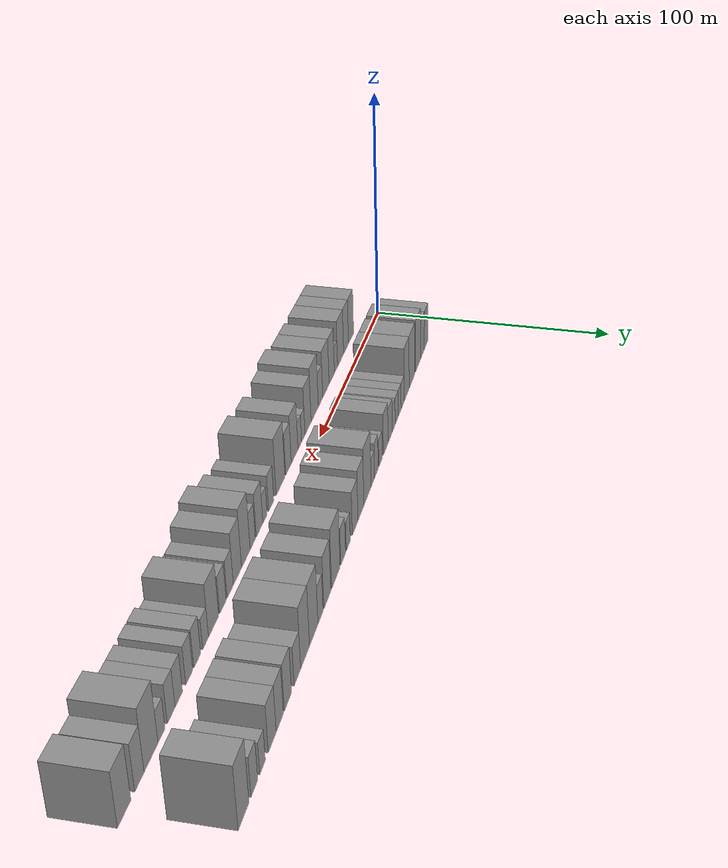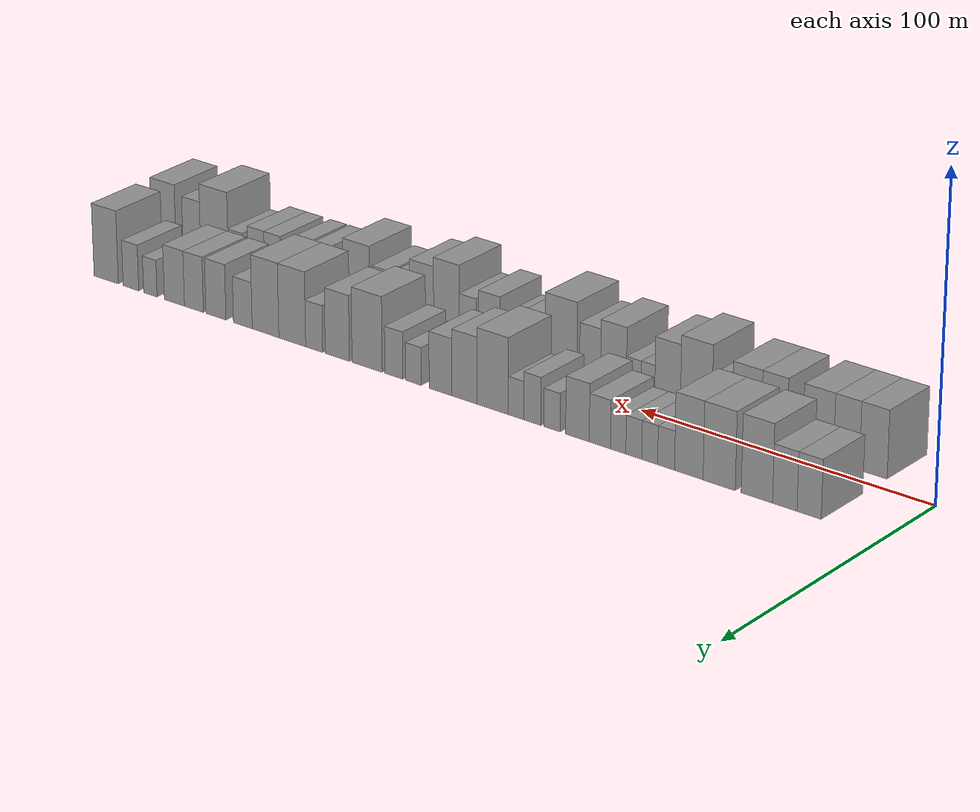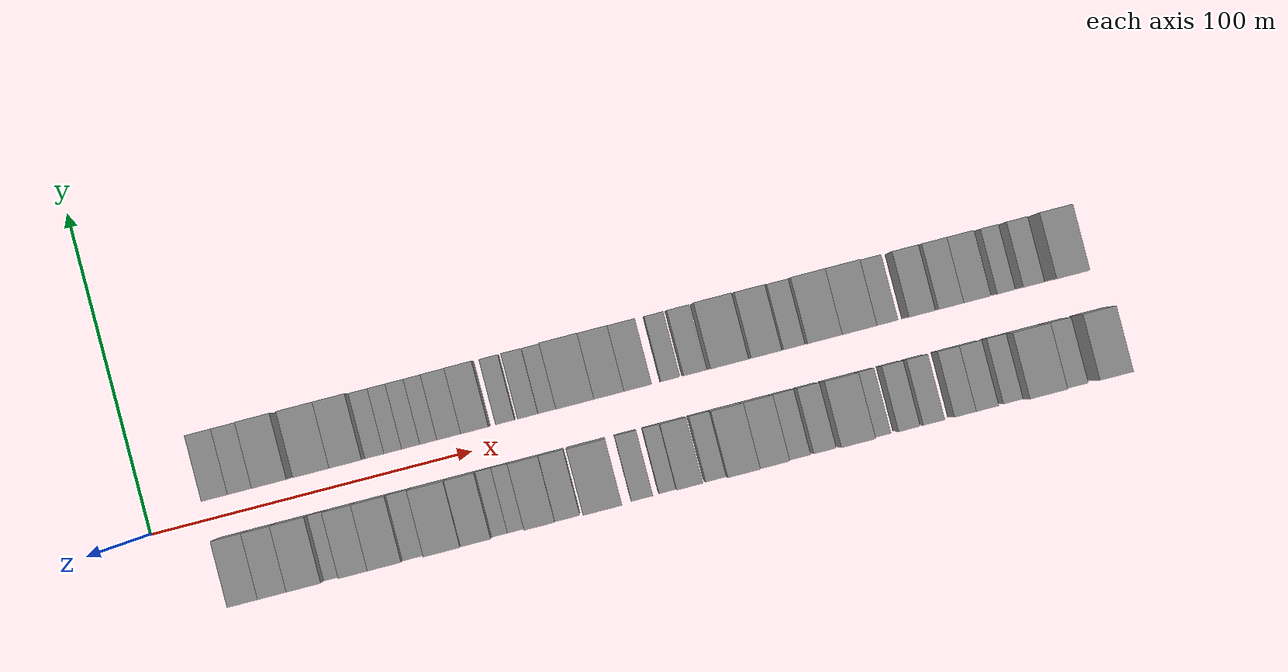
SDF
<sdf version="1.6">
 <world name="default">
  <scene>
   <sky><clouds><speed>12</speed></clouds></sky>
   <ambient>0.4 0.4 0.4 1</ambient>
   <background>0.7 0.7 0.7 1</background>
   <shadows>1</shadows>
  </scene>
  <gravity>0 0 -9.8066</gravity>
  <magnetic_field>6e-06 2.3e-05 -4.2e-05</magnetic_field>
  <physics default="0" name="default_physics" type="ode">
   <ode>
    <solver>
     <type>quick</type>
     <iters>10</iters>
     <sor>1.0</sor>
     <use_dynamic_moi_rescaling>0</use_dynamic_moi_rescaling>
    </solver>
    <constraints>
     <cfm>0</cfm>
     <erp>0.2</erp>
     <contact_max_correcting_vel>100</contact_max_correcting_vel>
     <contact_surface_layer>0.001</contact_surface_layer>
    </constraints>
   </ode>
   <max_step_size>0.004</max_step_size>
   <real_time_factor>1</real_time_factor>
   <real_time_update_rate>250</real_time_update_rate>
  </physics>
  <light name="sun" type="directional">
   <pose>0 0 10 0 0 0</pose>
   <diffuse>0.8 0.8 0.8 1</diffuse>
   <specular>0.2 0.2 0.2 1</specular>
   <attenuation>
    <range>1000</range>
    <constant>0.9</constant>
    <linear>0.01</linear>
    <quadratic>0.001</quadratic>
   </attenuation>
   <direction>-0.5 0.1 -0.9</direction>
  </light>
  <model name="building_1">
   <static>1</static>
   <pose>23.9897 16.0000 0 0.000000 0.000000 1.570796</pose>
   <link name="link">
    <pose>0 0 9.00 0 0 0</pose>
    <collision name="collision"><geometry><box><size>20.0000 7.9794 18.0000</size></box></geometry></collision>
    <visual name="visual">
     <cast_shadows>0</cast_shadows>
     <geometry><box><size>20.0000 7.9794 18.0000</size></box></geometry>
     <material>
      <script>
       <uri>model://grey_wall/materials/scripts</uri>
       <uri>model://grey_wall/materials/textures</uri>
       <name>vrc/grey_wall</name>
      </script>
     </material>
    </visual>
   </link>
  </model>
  <model name="building_2">
   <static>1</static>
   <pose>32.0457 16.0000 0 0.000000 0.000000 1.570796</pose>
   <link name="link">
    <pose>0 0 9.00 0 0 0</pose>
    <collision name="collision"><geometry><box><size>20.0000 8.1326 18.0000</size></box></geometry></collision>
    <visual name="visual">
     <cast_shadows>0</cast_shadows>
     <geometry><box><size>20.0000 8.1326 18.0000</size></box></geometry>
     <material>
      <script>
       <uri>model://grey_wall/materials/scripts</uri>
       <uri>model://grey_wall/materials/textures</uri>
       <name>vrc/grey_wall</name>
      </script>
     </material>
    </visual>
   </link>
  </model>
  <model name="building_3">
   <static>1</static>
   <pose>41.3516 16.0000 0 0.000000 0.000000 1.570796</pose>
   <link name="link">
    <pose>0 0 12.00 0 0 0</pose>
    <collision name="collision"><geometry><box><size>20.0000 10.4791 24.0000</size></box></geometry></collision>
    <visual name="visual">
     <cast_shadows>0</cast_shadows>
     <geometry><box><size>20.0000 10.4791 24.0000</size></box></geometry>
     <material>
      <script>
       <uri>model://grey_wall/materials/scripts</uri>
       <uri>model://grey_wall/materials/textures</uri>
       <name>vrc/grey_wall</name>
      </script>
     </material>
    </visual>
   </link>
  </model>
  <model name="building_4">
   <static>1</static>
   <pose>54.0591 16.0000 0 0.000000 0.000000 1.570796</pose>
   <link name="link">
    <pose>0 0 12.00 0 0 0</pose>
    <collision name="collision"><geometry><box><size>20.0000 10.9360 24.0000</size></box></geometry></collision>
    <visual name="visual">
     <cast_shadows>0</cast_shadows>
     <geometry><box><size>20.0000 10.9360 24.0000</size></box></geometry>
     <material>
      <script>
       <uri>model://grey_wall/materials/scripts</uri>
       <uri>model://grey_wall/materials/textures</uri>
       <name>vrc/grey_wall</name>
      </script>
     </material>
    </visual>
   </link>
  </model>
  <model name="building_5">
   <static>1</static>
   <pose>64.4099 16.0000 0 0.000000 0.000000 1.570796</pose>
   <link name="link">
    <pose>0 0 12.00 0 0 0</pose>
    <collision name="collision"><geometry><box><size>20.0000 9.7655 24.0000</size></box></geometry></collision>
    <visual name="visual">
     <cast_shadows>0</cast_shadows>
     <geometry><box><size>20.0000 9.7655 24.0000</size></box></geometry>
     <material>
      <script>
       <uri>model://grey_wall/materials/scripts</uri>
       <uri>model://grey_wall/materials/textures</uri>
       <name>vrc/grey_wall</name>
      </script>
     </material>
    </visual>
   </link>
  </model>
  <model name="building_6">
   <static>1</static>
   <pose>72.1993 16.0000 0 0.000000 0.000000 1.570796</pose>
   <link name="link">
    <pose>0 0 6.00 0 0 0</pose>
    <collision name="collision"><geometry><box><size>20.0000 5.8133 12.0000</size></box></geometry></collision>
    <visual name="visual">
     <cast_shadows>0</cast_shadows>
     <geometry><box><size>20.0000 5.8133 12.0000</size></box></geometry>
     <material>
      <script>
       <uri>model://grey_wall/materials/scripts</uri>
       <uri>model://grey_wall/materials/textures</uri>
       <name>vrc/grey_wall</name>
      </script>
     </material>
    </visual>
   </link>
  </model>
  <model name="building_7">
   <static>1</static>
   <pose>77.8411 16.0000 0 0.000000 0.000000 1.570796</pose>
   <link name="link">
    <pose>0 0 6.00 0 0 0</pose>
    <collision name="collision"><geometry><box><size>20.0000 5.4703 12.0000</size></box></geometry></collision>
    <visual name="visual">
     <cast_shadows>0</cast_shadows>
     <geometry><box><size>20.0000 5.4703 12.0000</size></box></geometry>
     <material>
      <script>
       <uri>model://grey_wall/materials/scripts</uri>
       <uri>model://grey_wall/materials/textures</uri>
       <name>vrc/grey_wall</name>
      </script>
     </material>
    </visual>
   </link>
  </model>
  <model name="building_8">
   <static>1</static>
   <pose>83.3580 16.0000 0 0.000000 0.000000 1.570796</pose>
   <link name="link">
    <pose>0 0 6.00 0 0 0</pose>
    <collision name="collision"><geometry><box><size>20.0000 5.5636 12.0000</size></box></geometry></collision>
    <visual name="visual">
     <cast_shadows>0</cast_shadows>
     <geometry><box><size>20.0000 5.5636 12.0000</size></box></geometry>
     <material>
      <script>
       <uri>model://grey_wall/materials/scripts</uri>
       <uri>model://grey_wall/materials/textures</uri>
       <name>vrc/grey_wall</name>
      </script>
     </material>
    </visual>
   </link>
  </model>
  <model name="building_9">
   <static>1</static>
   <pose>88.8433 16.0000 0 0.000000 0.000000 1.570796</pose>
   <link name="link">
    <pose>0 0 6.00 0 0 0</pose>
    <collision name="collision"><geometry><box><size>20.0000 5.4069 12.0000</size></box></geometry></collision>
    <visual name="visual">
     <cast_shadows>0</cast_shadows>
     <geometry><box><size>20.0000 5.4069 12.0000</size></box></geometry>
     <material>
      <script>
       <uri>model://grey_wall/materials/scripts</uri>
       <uri>model://grey_wall/materials/textures</uri>
       <name>vrc/grey_wall</name>
      </script>
     </material>
    </visual>
   </link>
  </model>
  <model name="building_10">
   <static>1</static>
   <pose>95.2733 16.0000 0 0.000000 0.000000 1.570796</pose>
   <link name="link">
    <pose>0 0 7.50 0 0 0</pose>
    <collision name="collision"><geometry><box><size>20.0000 7.4531 15.0000</size></box></geometry></collision>
    <visual name="visual">
     <cast_shadows>0</cast_shadows>
     <geometry><box><size>20.0000 7.4531 15.0000</size></box></geometry>
     <material>
      <script>
       <uri>model://grey_wall/materials/scripts</uri>
       <uri>model://grey_wall/materials/textures</uri>
       <name>vrc/grey_wall</name>
      </script>
     </material>
    </visual>
   </link>
  </model>
  <model name="building_11">
   <static>1</static>
   <pose>103.1877 16.0000 0 0.000000 0.000000 1.570796</pose>
   <link name="link">
    <pose>0 0 9.00 0 0 0</pose>
    <collision name="collision"><geometry><box><size>20.0000 8.3757 18.0000</size></box></geometry></collision>
    <visual name="visual">
     <cast_shadows>0</cast_shadows>
     <geometry><box><size>20.0000 8.3757 18.0000</size></box></geometry>
     <material>
      <script>
       <uri>model://grey_wall/materials/scripts</uri>
       <uri>model://grey_wall/materials/textures</uri>
       <name>vrc/grey_wall</name>
      </script>
     </material>
    </visual>
   </link>
  </model>
  <model name="building_12">
   <static>1</static>
   <pose>112.2840 16.0000 0 0.000000 0.000000 1.570796</pose>
   <link name="link">
    <pose>0 0 6.00 0 0 0</pose>
    <collision name="collision"><geometry><box><size>20.0000 5.8167 12.0000</size></box></geometry></collision>
    <visual name="visual">
     <cast_shadows>0</cast_shadows>
     <geometry><box><size>20.0000 5.8167 12.0000</size></box></geometry>
     <material>
      <script>
       <uri>model://grey_wall/materials/scripts</uri>
       <uri>model://grey_wall/materials/textures</uri>
       <name>vrc/grey_wall</name>
      </script>
     </material>
    </visual>
   </link>
  </model>
  <model name="building_13">
   <static>1</static>
   <pose>119.3106 16.0000 0 0.000000 0.000000 1.570796</pose>
   <link name="link">
    <pose>0 0 7.50 0 0 0</pose>
    <collision name="collision"><geometry><box><size>20.0000 6.2365 15.0000</size></box></geometry></collision>
    <visual name="visual">
     <cast_shadows>0</cast_shadows>
     <geometry><box><size>20.0000 6.2365 15.0000</size></box></geometry>
     <material>
      <script>
       <uri>model://grey_wall/materials/scripts</uri>
       <uri>model://grey_wall/materials/textures</uri>
       <name>vrc/grey_wall</name>
      </script>
     </material>
    </visual>
   </link>
  </model>
  <model name="building_14">
   <static>1</static>
   <pose>125.2256 16.0000 0 0.000000 0.000000 1.570796</pose>
   <link name="link">
    <pose>0 0 6.00 0 0 0</pose>
    <collision name="collision"><geometry><box><size>20.0000 5.5934 12.0000</size></box></geometry></collision>
    <visual name="visual">
     <cast_shadows>0</cast_shadows>
     <geometry><box><size>20.0000 5.5934 12.0000</size></box></geometry>
     <material>
      <script>
       <uri>model://grey_wall/materials/scripts</uri>
       <uri>model://grey_wall/materials/textures</uri>
       <name>vrc/grey_wall</name>
      </script>
     </material>
    </visual>
   </link>
  </model>
  <model name="building_15">
   <static>1</static>
   <pose>133.7658 16.0000 0 0.000000 0.000000 1.570796</pose>
   <link name="link">
    <pose>0 0 12.00 0 0 0</pose>
    <collision name="collision"><geometry><box><size>20.0000 11.4869 24.0000</size></box></geometry></collision>
    <visual name="visual">
     <cast_shadows>0</cast_shadows>
     <geometry><box><size>20.0000 11.4869 24.0000</size></box></geometry>
     <material>
      <script>
       <uri>model://grey_wall/materials/scripts</uri>
       <uri>model://grey_wall/materials/textures</uri>
       <name>vrc/grey_wall</name>
      </script>
     </material>
    </visual>
   </link>
  </model>
  <model name="building_16">
   <static>1</static>
   <pose>144.0793 16.0000 0 0.000000 0.000000 1.570796</pose>
   <link name="link">
    <pose>0 0 10.50 0 0 0</pose>
    <collision name="collision"><geometry><box><size>20.0000 9.1402 21.0000</size></box></geometry></collision>
    <visual name="visual">
     <cast_shadows>0</cast_shadows>
     <geometry><box><size>20.0000 9.1402 21.0000</size></box></geometry>
     <material>
      <script>
       <uri>model://grey_wall/materials/scripts</uri>
       <uri>model://grey_wall/materials/textures</uri>
       <name>vrc/grey_wall</name>
      </script>
     </material>
    </visual>
   </link>
  </model>
  <model name="building_17">
   <static>1</static>
   <pose>152.8760 16.0000 0 0.000000 0.000000 1.570796</pose>
   <link name="link">
    <pose>0 0 9.00 0 0 0</pose>
    <collision name="collision"><geometry><box><size>20.0000 8.4531 18.0000</size></box></geometry></collision>
    <visual name="visual">
     <cast_shadows>0</cast_shadows>
     <geometry><box><size>20.0000 8.4531 18.0000</size></box></geometry>
     <material>
      <script>
       <uri>model://grey_wall/materials/scripts</uri>
       <uri>model://grey_wall/materials/textures</uri>
       <name>vrc/grey_wall</name>
      </script>
     </material>
    </visual>
   </link>
  </model>
  <model name="building_18">
   <static>1</static>
   <pose>163.0296 16.0000 0 0.000000 0.000000 1.570796</pose>
   <link name="link">
    <pose>0 0 6.00 0 0 0</pose>
    <collision name="collision"><geometry><box><size>20.0000 5.8539 12.0000</size></box></geometry></collision>
    <visual name="visual">
     <cast_shadows>0</cast_shadows>
     <geometry><box><size>20.0000 5.8539 12.0000</size></box></geometry>
     <material>
      <script>
       <uri>model://grey_wall/materials/scripts</uri>
       <uri>model://grey_wall/materials/textures</uri>
       <name>vrc/grey_wall</name>
      </script>
     </material>
    </visual>
   </link>
  </model>
  <model name="building_19">
   <static>1</static>
   <pose>170.3531 16.0000 0 0.000000 0.000000 1.570796</pose>
   <link name="link">
    <pose>0 0 7.50 0 0 0</pose>
    <collision name="collision"><geometry><box><size>20.0000 6.7931 15.0000</size></box></geometry></collision>
    <visual name="visual">
     <cast_shadows>0</cast_shadows>
     <geometry><box><size>20.0000 6.7931 15.0000</size></box></geometry>
     <material>
      <script>
       <uri>model://grey_wall/materials/scripts</uri>
       <uri>model://grey_wall/materials/textures</uri>
       <name>vrc/grey_wall</name>
      </script>
     </material>
    </visual>
   </link>
  </model>
  <model name="building_20">
   <static>1</static>
   <pose>180.4915 16.0000 0 0.000000 0.000000 1.570796</pose>
   <link name="link">
    <pose>0 0 12.00 0 0 0</pose>
    <collision name="collision"><geometry><box><size>20.0000 11.4838 24.0000</size></box></geometry></collision>
    <visual name="visual">
     <cast_shadows>0</cast_shadows>
     <geometry><box><size>20.0000 11.4838 24.0000</size></box></geometry>
     <material>
      <script>
       <uri>model://grey_wall/materials/scripts</uri>
       <uri>model://grey_wall/materials/textures</uri>
       <name>vrc/grey_wall</name>
      </script>
     </material>
    </visual>
   </link>
  </model>
  <model name="building_21">
   <static>1</static>
   <pose>191.8626 16.0000 0 0.000000 0.000000 1.570796</pose>
   <link name="link">
    <pose>0 0 10.50 0 0 0</pose>
    <collision name="collision"><geometry><box><size>20.0000 9.2583 21.0000</size></box></geometry></collision>
    <visual name="visual">
     <cast_shadows>0</cast_shadows>
     <geometry><box><size>20.0000 9.2583 21.0000</size></box></geometry>
     <material>
      <script>
       <uri>model://grey_wall/materials/scripts</uri>
       <uri>model://grey_wall/materials/textures</uri>
       <name>vrc/grey_wall</name>
      </script>
     </material>
    </visual>
   </link>
  </model>
  <model name="building_22">
   <static>1</static>
   <pose>200.7845 16.0000 0 0.000000 0.000000 1.570796</pose>
   <link name="link">
    <pose>0 0 7.50 0 0 0</pose>
    <collision name="collision"><geometry><box><size>20.0000 6.5855 15.0000</size></box></geometry></collision>
    <visual name="visual">
     <cast_shadows>0</cast_shadows>
     <geometry><box><size>20.0000 6.5855 15.0000</size></box></geometry>
     <material>
      <script>
       <uri>model://grey_wall/materials/scripts</uri>
       <uri>model://grey_wall/materials/textures</uri>
       <name>vrc/grey_wall</name>
      </script>
     </material>
    </visual>
   </link>
  </model>
  <model name="building_23">
   <static>1</static>
   <pose>209.3078 16.0000 0 0.000000 0.000000 1.570796</pose>
   <link name="link">
    <pose>0 0 12.00 0 0 0</pose>
    <collision name="collision"><geometry><box><size>20.0000 10.4612 24.0000</size></box></geometry></collision>
    <visual name="visual">
     <cast_shadows>0</cast_shadows>
     <geometry><box><size>20.0000 10.4612 24.0000</size></box></geometry>
     <material>
      <script>
       <uri>model://grey_wall/materials/scripts</uri>
       <uri>model://grey_wall/materials/textures</uri>
       <name>vrc/grey_wall</name>
      </script>
     </material>
    </visual>
   </link>
  </model>
  <model name="building_24">
   <static>1</static>
   <pose>219.7901 16.0000 0 0.000000 0.000000 1.570796</pose>
   <link name="link">
    <pose>0 0 12.00 0 0 0</pose>
    <collision name="collision"><geometry><box><size>20.0000 10.5034 24.0000</size></box></geometry></collision>
    <visual name="visual">
     <cast_shadows>0</cast_shadows>
     <geometry><box><size>20.0000 10.5034 24.0000</size></box></geometry>
     <material>
      <script>
       <uri>model://grey_wall/materials/scripts</uri>
       <uri>model://grey_wall/materials/textures</uri>
       <name>vrc/grey_wall</name>
      </script>
     </material>
    </visual>
   </link>
  </model>
  <model name="building_25">
   <static>1</static>
   <pose>228.7678 16.0000 0 0.000000 0.000000 1.570796</pose>
   <link name="link">
    <pose>0 0 7.50 0 0 0</pose>
    <collision name="collision"><geometry><box><size>20.0000 7.4520 15.0000</size></box></geometry></collision>
    <visual name="visual">
     <cast_shadows>0</cast_shadows>
     <geometry><box><size>20.0000 7.4520 15.0000</size></box></geometry>
     <material>
      <script>
       <uri>model://grey_wall/materials/scripts</uri>
       <uri>model://grey_wall/materials/textures</uri>
       <name>vrc/grey_wall</name>
      </script>
     </material>
    </visual>
   </link>
  </model>
  <model name="building_26">
   <static>1</static>
   <pose>239.5030 16.0000 0 0.000000 0.000000 1.570796</pose>
   <link name="link">
    <pose>0 0 9.00 0 0 0</pose>
    <collision name="collision"><geometry><box><size>20.0000 8.0183 18.0000</size></box></geometry></collision>
    <visual name="visual">
     <cast_shadows>0</cast_shadows>
     <geometry><box><size>20.0000 8.0183 18.0000</size></box></geometry>
     <material>
      <script>
       <uri>model://grey_wall/materials/scripts</uri>
       <uri>model://grey_wall/materials/textures</uri>
       <name>vrc/grey_wall</name>
      </script>
     </material>
    </visual>
   </link>
  </model>
  <model name="building_27">
   <static>1</static>
   <pose>248.3474 16.0000 0 0.000000 0.000000 1.570796</pose>
   <link name="link">
    <pose>0 0 9.00 0 0 0</pose>
    <collision name="collision"><geometry><box><size>20.0000 7.6706 18.0000</size></box></geometry></collision>
    <visual name="visual">
     <cast_shadows>0</cast_shadows>
     <geometry><box><size>20.0000 7.6706 18.0000</size></box></geometry>
     <material>
      <script>
       <uri>model://grey_wall/materials/scripts</uri>
       <uri>model://grey_wall/materials/textures</uri>
       <name>vrc/grey_wall</name>
      </script>
     </material>
    </visual>
   </link>
  </model>
  <model name="building_28">
   <static>1</static>
   <pose>256.2662 16.0000 0 0.000000 0.000000 1.570796</pose>
   <link name="link">
    <pose>0 0 9.00 0 0 0</pose>
    <collision name="collision"><geometry><box><size>20.0000 8.1670 18.0000</size></box></geometry></collision>
    <visual name="visual">
     <cast_shadows>0</cast_shadows>
     <geometry><box><size>20.0000 8.1670 18.0000</size></box></geometry>
     <material>
      <script>
       <uri>model://grey_wall/materials/scripts</uri>
       <uri>model://grey_wall/materials/textures</uri>
       <name>vrc/grey_wall</name>
      </script>
     </material>
    </visual>
   </link>
  </model>
  <model name="building_29">
   <static>1</static>
   <pose>266.1053 16.0000 0 0.000000 0.000000 1.570796</pose>
   <link name="link">
    <pose>0 0 6.00 0 0 0</pose>
    <collision name="collision"><geometry><box><size>20.0000 5.5113 12.0000</size></box></geometry></collision>
    <visual name="visual">
     <cast_shadows>0</cast_shadows>
     <geometry><box><size>20.0000 5.5113 12.0000</size></box></geometry>
     <material>
      <script>
       <uri>model://grey_wall/materials/scripts</uri>
       <uri>model://grey_wall/materials/textures</uri>
       <name>vrc/grey_wall</name>
      </script>
     </material>
    </visual>
   </link>
  </model>
  <model name="building_30">
   <static>1</static>
   <pose>274.0847 16.0000 0 0.000000 0.000000 1.570796</pose>
   <link name="link">
    <pose>0 0 7.50 0 0 0</pose>
    <collision name="collision"><geometry><box><size>20.0000 6.4473 15.0000</size></box></geometry></collision>
    <visual name="visual">
     <cast_shadows>0</cast_shadows>
     <geometry><box><size>20.0000 6.4473 15.0000</size></box></geometry>
     <material>
      <script>
       <uri>model://grey_wall/materials/scripts</uri>
       <uri>model://grey_wall/materials/textures</uri>
       <name>vrc/grey_wall</name>
      </script>
     </material>
    </visual>
   </link>
  </model>
  <model name="building_31">
   <static>1</static>
   <pose>284.3253 16.0000 0 0.000000 0.000000 1.570796</pose>
   <link name="link">
    <pose>0 0 12.00 0 0 0</pose>
    <collision name="collision"><geometry><box><size>20.0000 10.0339 24.0000</size></box></geometry></collision>
    <visual name="visual">
     <cast_shadows>0</cast_shadows>
     <geometry><box><size>20.0000 10.0339 24.0000</size></box></geometry>
     <material>
      <script>
       <uri>model://grey_wall/materials/scripts</uri>
       <uri>model://grey_wall/materials/textures</uri>
       <name>vrc/grey_wall</name>
      </script>
     </material>
    </visual>
   </link>
  </model>
  <model name="building_32">
   <static>1</static>
   <pose>24.6128 -16.0000 0 0.000000 0.000000 1.570796</pose>
   <link name="link">
    <pose>0 0 10.50 0 0 0</pose>
    <collision name="collision"><geometry><box><size>20.0000 9.2257 21.0000</size></box></geometry></collision>
    <visual name="visual">
     <cast_shadows>0</cast_shadows>
     <geometry><box><size>20.0000 9.2257 21.0000</size></box></geometry>
     <material>
      <script>
       <uri>model://grey_wall/materials/scripts</uri>
       <uri>model://grey_wall/materials/textures</uri>
       <name>vrc/grey_wall</name>
      </script>
     </material>
    </visual>
   </link>
  </model>
  <model name="building_33">
   <static>1</static>
   <pose>33.5681 -16.0000 0 0.000000 0.000000 1.570796</pose>
   <link name="link">
    <pose>0 0 10.50 0 0 0</pose>
    <collision name="collision"><geometry><box><size>20.0000 8.6849 21.0000</size></box></geometry></collision>
    <visual name="visual">
     <cast_shadows>0</cast_shadows>
     <geometry><box><size>20.0000 8.6849 21.0000</size></box></geometry>
     <material>
      <script>
       <uri>model://grey_wall/materials/scripts</uri>
       <uri>model://grey_wall/materials/textures</uri>
       <name>vrc/grey_wall</name>
      </script>
     </material>
    </visual>
   </link>
  </model>
  <model name="building_34">
   <static>1</static>
   <pose>43.1339 -16.0000 0 0.000000 0.000000 1.570796</pose>
   <link name="link">
    <pose>0 0 10.50 0 0 0</pose>
    <collision name="collision"><geometry><box><size>20.0000 10.4465 21.0000</size></box></geometry></collision>
    <visual name="visual">
     <cast_shadows>0</cast_shadows>
     <geometry><box><size>20.0000 10.4465 21.0000</size></box></geometry>
     <material>
      <script>
       <uri>model://grey_wall/materials/scripts</uri>
       <uri>model://grey_wall/materials/textures</uri>
       <name>vrc/grey_wall</name>
      </script>
     </material>
    </visual>
   </link>
  </model>
  <model name="building_35">
   <static>1</static>
   <pose>51.0194 -16.0000 0 0.000000 0.000000 1.570796</pose>
   <link name="link">
    <pose>0 0 6.00 0 0 0</pose>
    <collision name="collision"><geometry><box><size>20.0000 5.3245 12.0000</size></box></geometry></collision>
    <visual name="visual">
     <cast_shadows>0</cast_shadows>
     <geometry><box><size>20.0000 5.3245 12.0000</size></box></geometry>
     <material>
      <script>
       <uri>model://grey_wall/materials/scripts</uri>
       <uri>model://grey_wall/materials/textures</uri>
       <name>vrc/grey_wall</name>
      </script>
     </material>
    </visual>
   </link>
  </model>
  <model name="building_36">
   <static>1</static>
   <pose>58.0935 -16.0000 0 0.000000 0.000000 1.570796</pose>
   <link name="link">
    <pose>0 0 10.50 0 0 0</pose>
    <collision name="collision"><geometry><box><size>20.0000 8.8238 21.0000</size></box></geometry></collision>
    <visual name="visual">
     <cast_shadows>0</cast_shadows>
     <geometry><box><size>20.0000 8.8238 21.0000</size></box></geometry>
     <material>
      <script>
       <uri>model://grey_wall/materials/scripts</uri>
       <uri>model://grey_wall/materials/textures</uri>
       <name>vrc/grey_wall</name>
      </script>
     </material>
    </visual>
   </link>
  </model>
  <model name="building_37">
   <static>1</static>
   <pose>67.6104 -16.0000 0 0.000000 0.000000 1.570796</pose>
   <link name="link">
    <pose>0 0 10.50 0 0 0</pose>
    <collision name="collision"><geometry><box><size>20.0000 10.2100 21.0000</size></box></geometry></collision>
    <visual name="visual">
     <cast_shadows>0</cast_shadows>
     <geometry><box><size>20.0000 10.2100 21.0000</size></box></geometry>
     <material>
      <script>
       <uri>model://grey_wall/materials/scripts</uri>
       <uri>model://grey_wall/materials/textures</uri>
       <name>vrc/grey_wall</name>
      </script>
     </material>
    </visual>
   </link>
  </model>
  <model name="building_38">
   <static>1</static>
   <pose>76.1924 -16.0000 0 0.000000 0.000000 1.570796</pose>
   <link name="link">
    <pose>0 0 7.50 0 0 0</pose>
    <collision name="collision"><geometry><box><size>20.0000 6.9540 15.0000</size></box></geometry></collision>
    <visual name="visual">
     <cast_shadows>0</cast_shadows>
     <geometry><box><size>20.0000 6.9540 15.0000</size></box></geometry>
     <material>
      <script>
       <uri>model://grey_wall/materials/scripts</uri>
       <uri>model://grey_wall/materials/textures</uri>
       <name>vrc/grey_wall</name>
      </script>
     </material>
    </visual>
   </link>
  </model>
  <model name="building_39">
   <static>1</static>
   <pose>85.1978 -16.0000 0 0.000000 0.000000 1.570796</pose>
   <link name="link">
    <pose>0 0 12.00 0 0 0</pose>
    <collision name="collision"><geometry><box><size>20.0000 11.0569 24.0000</size></box></geometry></collision>
    <visual name="visual">
     <cast_shadows>0</cast_shadows>
     <geometry><box><size>20.0000 11.0569 24.0000</size></box></geometry>
     <material>
      <script>
       <uri>model://grey_wall/materials/scripts</uri>
       <uri>model://grey_wall/materials/textures</uri>
       <name>vrc/grey_wall</name>
      </script>
     </material>
    </visual>
   </link>
  </model>
  <model name="building_40">
   <static>1</static>
   <pose>95.2963 -16.0000 0 0.000000 0.000000 1.570796</pose>
   <link name="link">
    <pose>0 0 10.50 0 0 0</pose>
    <collision name="collision"><geometry><box><size>20.0000 9.1401 21.0000</size></box></geometry></collision>
    <visual name="visual">
     <cast_shadows>0</cast_shadows>
     <geometry><box><size>20.0000 9.1401 21.0000</size></box></geometry>
     <material>
      <script>
       <uri>model://grey_wall/materials/scripts</uri>
       <uri>model://grey_wall/materials/textures</uri>
       <name>vrc/grey_wall</name>
      </script>
     </material>
    </visual>
   </link>
  </model>
  <model name="building_41">
   <static>1</static>
   <pose>102.2779 -16.0000 0 0.000000 0.000000 1.570796</pose>
   <link name="link">
    <pose>0 0 6.00 0 0 0</pose>
    <collision name="collision"><geometry><box><size>20.0000 4.8230 12.0000</size></box></geometry></collision>
    <visual name="visual">
     <cast_shadows>0</cast_shadows>
     <geometry><box><size>20.0000 4.8230 12.0000</size></box></geometry>
     <material>
      <script>
       <uri>model://grey_wall/materials/scripts</uri>
       <uri>model://grey_wall/materials/textures</uri>
       <name>vrc/grey_wall</name>
      </script>
     </material>
    </visual>
   </link>
  </model>
  <model name="building_42">
   <static>1</static>
   <pose>107.3566 -16.0000 0 0.000000 0.000000 1.570796</pose>
   <link name="link">
    <pose>0 0 6.00 0 0 0</pose>
    <collision name="collision"><geometry><box><size>20.0000 5.3344 12.0000</size></box></geometry></collision>
    <visual name="visual">
     <cast_shadows>0</cast_shadows>
     <geometry><box><size>20.0000 5.3344 12.0000</size></box></geometry>
     <material>
      <script>
       <uri>model://grey_wall/materials/scripts</uri>
       <uri>model://grey_wall/materials/textures</uri>
       <name>vrc/grey_wall</name>
      </script>
     </material>
    </visual>
   </link>
  </model>
  <model name="building_43">
   <static>1</static>
   <pose>114.6691 -16.0000 0 0.000000 0.000000 1.570796</pose>
   <link name="link">
    <pose>0 0 10.50 0 0 0</pose>
    <collision name="collision"><geometry><box><size>20.0000 9.2907 21.0000</size></box></geometry></collision>
    <visual name="visual">
     <cast_shadows>0</cast_shadows>
     <geometry><box><size>20.0000 9.2907 21.0000</size></box></geometry>
     <material>
      <script>
       <uri>model://grey_wall/materials/scripts</uri>
       <uri>model://grey_wall/materials/textures</uri>
       <name>vrc/grey_wall</name>
      </script>
     </material>
    </visual>
   </link>
  </model>
  <model name="building_44">
   <static>1</static>
   <pose>123.1195 -16.0000 0 0.000000 0.000000 1.570796</pose>
   <link name="link">
    <pose>0 0 9.00 0 0 0</pose>
    <collision name="collision"><geometry><box><size>20.0000 7.6099 18.0000</size></box></geometry></collision>
    <visual name="visual">
     <cast_shadows>0</cast_shadows>
     <geometry><box><size>20.0000 7.6099 18.0000</size></box></geometry>
     <material>
      <script>
       <uri>model://grey_wall/materials/scripts</uri>
       <uri>model://grey_wall/materials/textures</uri>
       <name>vrc/grey_wall</name>
      </script>
     </material>
    </visual>
   </link>
  </model>
  <model name="building_45">
   <static>1</static>
   <pose>133.7897 -16.0000 0 0.000000 0.000000 1.570796</pose>
   <link name="link">
    <pose>0 0 12.00 0 0 0</pose>
    <collision name="collision"><geometry><box><size>20.0000 11.7305 24.0000</size></box></geometry></collision>
    <visual name="visual">
     <cast_shadows>0</cast_shadows>
     <geometry><box><size>20.0000 11.7305 24.0000</size></box></geometry>
     <material>
      <script>
       <uri>model://grey_wall/materials/scripts</uri>
       <uri>model://grey_wall/materials/textures</uri>
       <name>vrc/grey_wall</name>
      </script>
     </material>
    </visual>
   </link>
  </model>
  <model name="building_46">
   <static>1</static>
   <pose>145.9405 -16.0000 0 0.000000 0.000000 1.570796</pose>
   <link name="link">
    <pose>0 0 7.50 0 0 0</pose>
    <collision name="collision"><geometry><box><size>20.0000 6.5711 15.0000</size></box></geometry></collision>
    <visual name="visual">
     <cast_shadows>0</cast_shadows>
     <geometry><box><size>20.0000 6.5711 15.0000</size></box></geometry>
     <material>
      <script>
       <uri>model://grey_wall/materials/scripts</uri>
       <uri>model://grey_wall/materials/textures</uri>
       <name>vrc/grey_wall</name>
      </script>
     </material>
    </visual>
   </link>
  </model>
  <model name="building_47">
   <static>1</static>
   <pose>153.8196 -16.0000 0 0.000000 0.000000 1.570796</pose>
   <link name="link">
    <pose>0 0 6.00 0 0 0</pose>
    <collision name="collision"><geometry><box><size>20.0000 5.1871 12.0000</size></box></geometry></collision>
    <visual name="visual">
     <cast_shadows>0</cast_shadows>
     <geometry><box><size>20.0000 5.1871 12.0000</size></box></geometry>
     <material>
      <script>
       <uri>model://grey_wall/materials/scripts</uri>
       <uri>model://grey_wall/materials/textures</uri>
       <name>vrc/grey_wall</name>
      </script>
     </material>
    </visual>
   </link>
  </model>
  <model name="building_48">
   <static>1</static>
   <pose>160.4005 -16.0000 0 0.000000 0.000000 1.570796</pose>
   <link name="link">
    <pose>0 0 9.00 0 0 0</pose>
    <collision name="collision"><geometry><box><size>20.0000 7.9746 18.0000</size></box></geometry></collision>
    <visual name="visual">
     <cast_shadows>0</cast_shadows>
     <geometry><box><size>20.0000 7.9746 18.0000</size></box></geometry>
     <material>
      <script>
       <uri>model://grey_wall/materials/scripts</uri>
       <uri>model://grey_wall/materials/textures</uri>
       <name>vrc/grey_wall</name>
      </script>
     </material>
    </visual>
   </link>
  </model>
  <model name="building_49">
   <static>1</static>
   <pose>168.5169 -16.0000 0 0.000000 0.000000 1.570796</pose>
   <link name="link">
    <pose>0 0 7.50 0 0 0</pose>
    <collision name="collision"><geometry><box><size>20.0000 6.2583 15.0000</size></box></geometry></collision>
    <visual name="visual">
     <cast_shadows>0</cast_shadows>
     <geometry><box><size>20.0000 6.2583 15.0000</size></box></geometry>
     <material>
      <script>
       <uri>model://grey_wall/materials/scripts</uri>
       <uri>model://grey_wall/materials/textures</uri>
       <name>vrc/grey_wall</name>
      </script>
     </material>
    </visual>
   </link>
  </model>
  <model name="building_50">
   <static>1</static>
   <pose>176.5633 -16.0000 0 0.000000 0.000000 1.570796</pose>
   <link name="link">
    <pose>0 0 12.00 0 0 0</pose>
    <collision name="collision"><geometry><box><size>20.0000 9.8346 24.0000</size></box></geometry></collision>
    <visual name="visual">
     <cast_shadows>0</cast_shadows>
     <geometry><box><size>20.0000 9.8346 24.0000</size></box></geometry>
     <material>
      <script>
       <uri>model://grey_wall/materials/scripts</uri>
       <uri>model://grey_wall/materials/textures</uri>
       <name>vrc/grey_wall</name>
      </script>
     </material>
    </visual>
   </link>
  </model>
  <model name="building_51">
   <static>1</static>
   <pose>186.0494 -16.0000 0 0.000000 0.000000 1.570796</pose>
   <link name="link">
    <pose>0 0 10.50 0 0 0</pose>
    <collision name="collision"><geometry><box><size>20.0000 9.1376 21.0000</size></box></geometry></collision>
    <visual name="visual">
     <cast_shadows>0</cast_shadows>
     <geometry><box><size>20.0000 9.1376 21.0000</size></box></geometry>
     <material>
      <script>
       <uri>model://grey_wall/materials/scripts</uri>
       <uri>model://grey_wall/materials/textures</uri>
       <name>vrc/grey_wall</name>
      </script>
     </material>
    </visual>
   </link>
  </model>
  <model name="building_52">
   <static>1</static>
   <pose>194.0189 -16.0000 0 0.000000 0.000000 1.570796</pose>
   <link name="link">
    <pose>0 0 7.50 0 0 0</pose>
    <collision name="collision"><geometry><box><size>20.0000 6.8016 15.0000</size></box></geometry></collision>
    <visual name="visual">
     <cast_shadows>0</cast_shadows>
     <geometry><box><size>20.0000 6.8016 15.0000</size></box></geometry>
     <material>
      <script>
       <uri>model://grey_wall/materials/scripts</uri>
       <uri>model://grey_wall/materials/textures</uri>
       <name>vrc/grey_wall</name>
      </script>
     </material>
    </visual>
   </link>
  </model>
  <model name="building_53">
   <static>1</static>
   <pose>201.8408 -16.0000 0 0.000000 0.000000 1.570796</pose>
   <link name="link">
    <pose>0 0 7.50 0 0 0</pose>
    <collision name="collision"><geometry><box><size>20.0000 6.8421 15.0000</size></box></geometry></collision>
    <visual name="visual">
     <cast_shadows>0</cast_shadows>
     <geometry><box><size>20.0000 6.8421 15.0000</size></box></geometry>
     <material>
      <script>
       <uri>model://grey_wall/materials/scripts</uri>
       <uri>model://grey_wall/materials/textures</uri>
       <name>vrc/grey_wall</name>
      </script>
     </material>
    </visual>
   </link>
  </model>
  <model name="building_54">
   <static>1</static>
   <pose>211.4573 -16.0000 0 0.000000 0.000000 1.570796</pose>
   <link name="link">
    <pose>0 0 10.50 0 0 0</pose>
    <collision name="collision"><geometry><box><size>20.0000 10.3910 21.0000</size></box></geometry></collision>
    <visual name="visual">
     <cast_shadows>0</cast_shadows>
     <geometry><box><size>20.0000 10.3910 21.0000</size></box></geometry>
     <material>
      <script>
       <uri>model://grey_wall/materials/scripts</uri>
       <uri>model://grey_wall/materials/textures</uri>
       <name>vrc/grey_wall</name>
      </script>
     </material>
    </visual>
   </link>
  </model>
  <model name="building_55">
   <static>1</static>
   <pose>219.5075 -16.0000 0 0.000000 0.000000 1.570796</pose>
   <link name="link">
    <pose>0 0 6.00 0 0 0</pose>
    <collision name="collision"><geometry><box><size>20.0000 5.7094 12.0000</size></box></geometry></collision>
    <visual name="visual">
     <cast_shadows>0</cast_shadows>
     <geometry><box><size>20.0000 5.7094 12.0000</size></box></geometry>
     <material>
      <script>
       <uri>model://grey_wall/materials/scripts</uri>
       <uri>model://grey_wall/materials/textures</uri>
       <name>vrc/grey_wall</name>
      </script>
     </material>
    </visual>
   </link>
  </model>
  <model name="building_56">
   <static>1</static>
   <pose>227.6432 -16.0000 0 0.000000 0.000000 1.570796</pose>
   <link name="link">
    <pose>0 0 7.50 0 0 0</pose>
    <collision name="collision"><geometry><box><size>20.0000 6.5619 15.0000</size></box></geometry></collision>
    <visual name="visual">
     <cast_shadows>0</cast_shadows>
     <geometry><box><size>20.0000 6.5619 15.0000</size></box></geometry>
     <material>
      <script>
       <uri>model://grey_wall/materials/scripts</uri>
       <uri>model://grey_wall/materials/textures</uri>
       <name>vrc/grey_wall</name>
      </script>
     </material>
    </visual>
   </link>
  </model>
  <model name="building_57">
   <static>1</static>
   <pose>235.1848 -16.0000 0 0.000000 0.000000 1.570796</pose>
   <link name="link">
    <pose>0 0 7.50 0 0 0</pose>
    <collision name="collision"><geometry><box><size>20.0000 6.5214 15.0000</size></box></geometry></collision>
    <visual name="visual">
     <cast_shadows>0</cast_shadows>
     <geometry><box><size>20.0000 6.5214 15.0000</size></box></geometry>
     <material>
      <script>
       <uri>model://grey_wall/materials/scripts</uri>
       <uri>model://grey_wall/materials/textures</uri>
       <name>vrc/grey_wall</name>
      </script>
     </material>
    </visual>
   </link>
  </model>
  <model name="building_58">
   <static>1</static>
   <pose>244.7732 -16.0000 0 0.000000 0.000000 1.570796</pose>
   <link name="link">
    <pose>0 0 7.50 0 0 0</pose>
    <collision name="collision"><geometry><box><size>20.0000 6.6553 15.0000</size></box></geometry></collision>
    <visual name="visual">
     <cast_shadows>0</cast_shadows>
     <geometry><box><size>20.0000 6.6553 15.0000</size></box></geometry>
     <material>
      <script>
       <uri>model://grey_wall/materials/scripts</uri>
       <uri>model://grey_wall/materials/textures</uri>
       <name>vrc/grey_wall</name>
      </script>
     </material>
    </visual>
   </link>
  </model>
  <model name="building_59">
   <static>1</static>
   <pose>251.5111 -16.0000 0 0.000000 0.000000 1.570796</pose>
   <link name="link">
    <pose>0 0 7.50 0 0 0</pose>
    <collision name="collision"><geometry><box><size>20.0000 6.8207 15.0000</size></box></geometry></collision>
    <visual name="visual">
     <cast_shadows>0</cast_shadows>
     <geometry><box><size>20.0000 6.8207 15.0000</size></box></geometry>
     <material>
      <script>
       <uri>model://grey_wall/materials/scripts</uri>
       <uri>model://grey_wall/materials/textures</uri>
       <name>vrc/grey_wall</name>
      </script>
     </material>
    </visual>
   </link>
  </model>
  <model name="building_60">
   <static>1</static>
   <pose>259.9147 -16.0000 0 0.000000 0.000000 1.570796</pose>
   <link name="link">
    <pose>0 0 6.00 0 0 0</pose>
    <collision name="collision"><geometry><box><size>20.0000 5.9865 12.0000</size></box></geometry></collision>
    <visual name="visual">
     <cast_shadows>0</cast_shadows>
     <geometry><box><size>20.0000 5.9865 12.0000</size></box></geometry>
     <material>
      <script>
       <uri>model://grey_wall/materials/scripts</uri>
       <uri>model://grey_wall/materials/textures</uri>
       <name>vrc/grey_wall</name>
      </script>
     </material>
    </visual>
   </link>
  </model>
  <model name="building_61">
   <static>1</static>
   <pose>268.6069 -16.0000 0 0.000000 0.000000 1.570796</pose>
   <link name="link">
    <pose>0 0 12.00 0 0 0</pose>
    <collision name="collision"><geometry><box><size>20.0000 11.3980 24.0000</size></box></geometry></collision>
    <visual name="visual">
     <cast_shadows>0</cast_shadows>
     <geometry><box><size>20.0000 11.3980 24.0000</size></box></geometry>
     <material>
      <script>
       <uri>model://grey_wall/materials/scripts</uri>
       <uri>model://grey_wall/materials/textures</uri>
       <name>vrc/grey_wall</name>
      </script>
     </material>
    </visual>
   </link>
  </model>
  <model name="building_62">
   <static>1</static>
   <pose>277.9925 -16.0000 0 0.000000 0.000000 1.570796</pose>
   <link name="link">
    <pose>0 0 9.00 0 0 0</pose>
    <collision name="collision"><geometry><box><size>20.0000 7.3733 18.0000</size></box></geometry></collision>
    <visual name="visual">
     <cast_shadows>0</cast_shadows>
     <geometry><box><size>20.0000 7.3733 18.0000</size></box></geometry>
     <material>
      <script>
       <uri>model://grey_wall/materials/scripts</uri>
       <uri>model://grey_wall/materials/textures</uri>
       <name>vrc/grey_wall</name>
      </script>
     </material>
    </visual>
   </link>
  </model>
  <model name="building_63">
   <static>1</static>
   <pose>289.7501 -16.0000 0 0.000000 0.000000 1.570796</pose>
   <link name="link">
    <pose>0 0 10.50 0 0 0</pose>
    <collision name="collision"><geometry><box><size>20.0000 10.1417 21.0000</size></box></geometry></collision>
    <visual name="visual">
     <cast_shadows>0</cast_shadows>
     <geometry><box><size>20.0000 10.1417 21.0000</size></box></geometry>
     <material>
      <script>
       <uri>model://grey_wall/materials/scripts</uri>
       <uri>model://grey_wall/materials/textures</uri>
       <name>vrc/grey_wall</name>
      </script>
     </material>
    </visual>
   </link>
  </model>
 </world>
</sdf>
